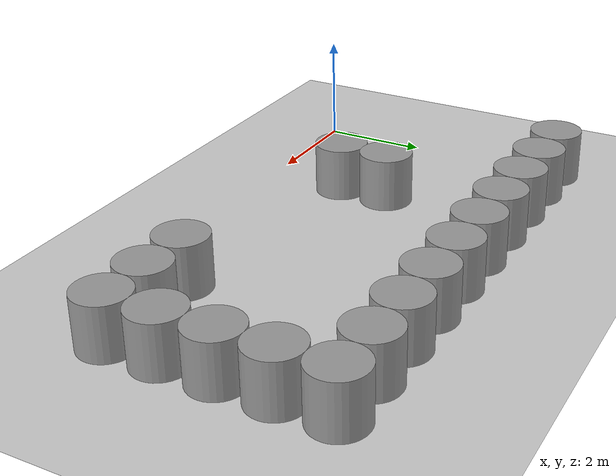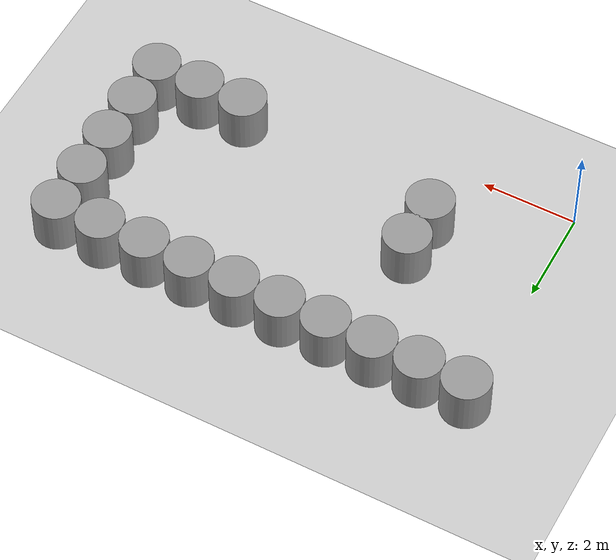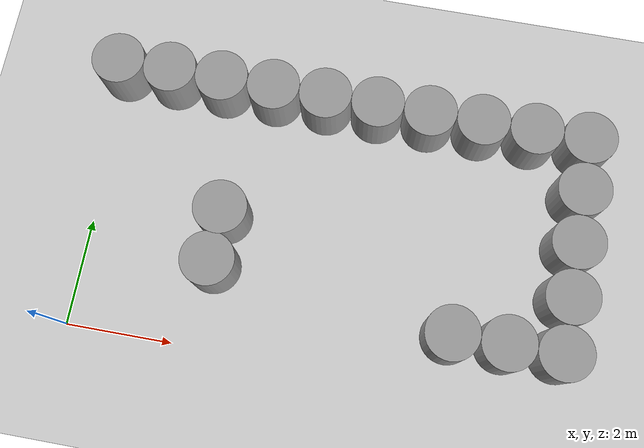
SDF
<sdf version="1.7">
 <world name="default">
  <model name="ground_plane">
   <static>1</static>
   <link name="link">
    <collision name="collision">
     <geometry><plane><normal>0 0 1</normal><size>100 100</size></plane></geometry>
     <surface>
      <contact><collide_bitmask>65535</collide_bitmask></contact>
      <friction><ode><mu>100</mu><mu2>50</mu2></ode></friction>
     </surface>
    </collision>
    <visual name="visual">
     <cast_shadows>0</cast_shadows>
     <geometry><plane><normal>0 0 1</normal><size>100 100</size></plane></geometry>
     <material>
      <script><uri>file://media/materials/scripts/gazebo.material</uri><name>Gazebo/Grey</name></script>
     </material>
    </visual>
   </link>
  </model>
  <model name="cylinder_1m_clone">
   <model name="cylinder_1m">
    <link name="link_0">
     <inertial>
      <mass>1</mass>
      <inertia>
       <ixx>0.166667</ixx>
       <ixy>0</ixy>
       <ixz>0</ixz>
       <iyy>0.166667</iyy>
       <iyz>0</iyz>
       <izz>0.166667</izz>
      </inertia>
     </inertial>
     <pose>0 0 -0 1.5708 -0 0</pose>
     <visual name="visual">
      <geometry>
       <mesh>
        <uri>/home/leesirius/workbench_ws/src/tb3_custom_worlds/custom_models/cylinder_1m.obj</uri>
        <scale>1 1 1</scale>
       </mesh>
      </geometry>
      <material>
       <lighting>1</lighting>
       <script><uri>file://media/materials/scripts/gazebo.material</uri><name>Gazebo/Grey</name></script>
       <shader type="pixel"/>
      </material>
     </visual>
     <collision name="collision">
      <geometry>
       <mesh>
        <uri>/home/leesirius/workbench_ws/src/tb3_custom_worlds/custom_models/cylinder_1m.obj</uri>
        <scale>1 1 1</scale>
       </mesh>
      </geometry>
      <surface>
       <friction>
        <ode><mu>1</mu><mu2>1</mu2><fdir1>0 0 0</fdir1><slip1>0</slip1><slip2>0</slip2></ode>
        <torsional>
         <coefficient>1</coefficient>
         <patch_radius>0</patch_radius>
         <surface_radius>0</surface_radius>
         <use_patch_radius>1</use_patch_radius>
         <ode><slip>0</slip></ode>
        </torsional>
       </friction>
       <bounce><restitution_coefficient>0</restitution_coefficient><threshold>1e+06</threshold></bounce>
       <contact>
        <collide_without_contact>0</collide_without_contact>
        <collide_without_contact_bitmask>1</collide_without_contact_bitmask>
        <collide_bitmask>1</collide_bitmask>
        <ode>
         <soft_cfm>0</soft_cfm>
         <soft_erp>0.2</soft_erp>
         <kp>1e+13</kp>
         <kd>1</kd>
         <max_vel>0.01</max_vel>
         <min_depth>0</min_depth>
        </ode>
        <bullet>
         <split_impulse>1</split_impulse>
         <split_impulse_penetration_threshold>-0.01</split_impulse_penetration_threshold>
         <soft_cfm>0</soft_cfm>
         <soft_erp>0.2</soft_erp>
         <kp>1e+13</kp>
         <kd>1</kd>
        </bullet>
       </contact>
      </surface>
     </collision>
    </link>
    <static>0</static>
    <pose>0 0 4e-06 0 -0 0</pose>
   </model>
   <static>1</static>
   <pose>1.00003 5 0.499993 -9e-06 5e-06 0.000231</pose>
  </model>
  <model name="cylinder_1m_2_clone_2">
   <model name="cylinder_1m">
    <link name="link_0">
     <inertial>
      <mass>1</mass>
      <inertia>
       <ixx>0.166667</ixx>
       <ixy>0</ixy>
       <ixz>0</ixz>
       <iyy>0.166667</iyy>
       <iyz>0</iyz>
       <izz>0.166667</izz>
      </inertia>
     </inertial>
     <pose>0 0 -0 1.5708 -0 0</pose>
     <visual name="visual">
      <geometry>
       <mesh>
        <uri>/home/leesirius/workbench_ws/src/tb3_custom_worlds/custom_models/cylinder_1m.obj</uri>
        <scale>1 1 1</scale>
       </mesh>
      </geometry>
      <material>
       <lighting>1</lighting>
       <script><uri>file://media/materials/scripts/gazebo.material</uri><name>Gazebo/Grey</name></script>
       <shader type="pixel"/>
      </material>
     </visual>
     <collision name="collision">
      <geometry>
       <mesh>
        <uri>/home/leesirius/workbench_ws/src/tb3_custom_worlds/custom_models/cylinder_1m.obj</uri>
        <scale>1 1 1</scale>
       </mesh>
      </geometry>
      <surface>
       <friction>
        <ode><mu>1</mu><mu2>1</mu2><fdir1>0 0 0</fdir1><slip1>0</slip1><slip2>0</slip2></ode>
        <torsional>
         <coefficient>1</coefficient>
         <patch_radius>0</patch_radius>
         <surface_radius>0</surface_radius>
         <use_patch_radius>1</use_patch_radius>
         <ode><slip>0</slip></ode>
        </torsional>
       </friction>
       <bounce><restitution_coefficient>0</restitution_coefficient><threshold>1e+06</threshold></bounce>
       <contact>
        <collide_without_contact>0</collide_without_contact>
        <collide_without_contact_bitmask>1</collide_without_contact_bitmask>
        <collide_bitmask>1</collide_bitmask>
        <ode>
         <soft_cfm>0</soft_cfm>
         <soft_erp>0.2</soft_erp>
         <kp>1e+13</kp>
         <kd>1</kd>
         <max_vel>0.01</max_vel>
         <min_depth>0</min_depth>
        </ode>
        <bullet>
         <split_impulse>1</split_impulse>
         <split_impulse_penetration_threshold>-0.01</split_impulse_penetration_threshold>
         <soft_cfm>0</soft_cfm>
         <soft_erp>0.2</soft_erp>
         <kp>1e+13</kp>
         <kd>1</kd>
        </bullet>
       </contact>
      </surface>
     </collision>
    </link>
    <static>0</static>
    <pose>0 0 4e-06 0 -0 0</pose>
   </model>
   <static>1</static>
   <pose>0.000101 5.00052 0.500002 -5.4e-05 8e-06 5.1e-05</pose>
  </model>
  <model name="cylinder_1m_2_clone_26">
   <model name="cylinder_1m">
    <link name="link_0">
     <inertial>
      <mass>1</mass>
      <inertia>
       <ixx>0.166667</ixx>
       <ixy>0</ixy>
       <ixz>0</ixz>
       <iyy>0.166667</iyy>
       <iyz>0</iyz>
       <izz>0.166667</izz>
      </inertia>
     </inertial>
     <pose>0 0 -0 1.5708 -0 0</pose>
     <visual name="visual">
      <geometry>
       <mesh>
        <uri>/home/leesirius/workbench_ws/src/tb3_custom_worlds/custom_models/cylinder_1m.obj</uri>
        <scale>1 1 1</scale>
       </mesh>
      </geometry>
      <material>
       <lighting>1</lighting>
       <script><uri>file://media/materials/scripts/gazebo.material</uri><name>Gazebo/Grey</name></script>
       <shader type="pixel"/>
      </material>
     </visual>
     <collision name="collision">
      <geometry>
       <mesh>
        <uri>/home/leesirius/workbench_ws/src/tb3_custom_worlds/custom_models/cylinder_1m.obj</uri>
        <scale>1 1 1</scale>
       </mesh>
      </geometry>
      <surface>
       <friction>
        <ode><mu>1</mu><mu2>1</mu2><fdir1>0 0 0</fdir1><slip1>0</slip1><slip2>0</slip2></ode>
        <torsional>
         <coefficient>1</coefficient>
         <patch_radius>0</patch_radius>
         <surface_radius>0</surface_radius>
         <use_patch_radius>1</use_patch_radius>
         <ode><slip>0</slip></ode>
        </torsional>
       </friction>
       <bounce><restitution_coefficient>0</restitution_coefficient><threshold>1e+06</threshold></bounce>
       <contact>
        <collide_without_contact>0</collide_without_contact>
        <collide_without_contact_bitmask>1</collide_without_contact_bitmask>
        <collide_bitmask>1</collide_bitmask>
        <ode>
         <soft_cfm>0</soft_cfm>
         <soft_erp>0.2</soft_erp>
         <kp>1e+13</kp>
         <kd>1</kd>
         <max_vel>0.01</max_vel>
         <min_depth>0</min_depth>
        </ode>
        <bullet>
         <split_impulse>1</split_impulse>
         <split_impulse_penetration_threshold>-0.01</split_impulse_penetration_threshold>
         <soft_cfm>0</soft_cfm>
         <soft_erp>0.2</soft_erp>
         <kp>1e+13</kp>
         <kd>1</kd>
        </bullet>
       </contact>
      </surface>
     </collision>
    </link>
    <static>0</static>
    <pose>0 0 4e-06 0 -0 0</pose>
   </model>
   <static>1</static>
   <pose>2.00003 4.99998 0.499993 -1e-05 3e-06 0.00017</pose>
  </model>
  <model name="cylinder_1m_2_clone_27">
   <model name="cylinder_1m">
    <link name="link_0">
     <inertial>
      <mass>1</mass>
      <inertia>
       <ixx>0.166667</ixx>
       <ixy>0</ixy>
       <ixz>0</ixz>
       <iyy>0.166667</iyy>
       <iyz>0</iyz>
       <izz>0.166667</izz>
      </inertia>
     </inertial>
     <pose>0 0 -0 1.5708 -0 0</pose>
     <visual name="visual">
      <geometry>
       <mesh>
        <uri>/home/leesirius/workbench_ws/src/tb3_custom_worlds/custom_models/cylinder_1m.obj</uri>
        <scale>1 1 1</scale>
       </mesh>
      </geometry>
      <material>
       <lighting>1</lighting>
       <script><uri>file://media/materials/scripts/gazebo.material</uri><name>Gazebo/Grey</name></script>
       <shader type="pixel"/>
      </material>
     </visual>
     <collision name="collision">
      <geometry>
       <mesh>
        <uri>/home/leesirius/workbench_ws/src/tb3_custom_worlds/custom_models/cylinder_1m.obj</uri>
        <scale>1 1 1</scale>
       </mesh>
      </geometry>
      <surface>
       <friction>
        <ode><mu>1</mu><mu2>1</mu2><fdir1>0 0 0</fdir1><slip1>0</slip1><slip2>0</slip2></ode>
        <torsional>
         <coefficient>1</coefficient>
         <patch_radius>0</patch_radius>
         <surface_radius>0</surface_radius>
         <use_patch_radius>1</use_patch_radius>
         <ode><slip>0</slip></ode>
        </torsional>
       </friction>
       <bounce><restitution_coefficient>0</restitution_coefficient><threshold>1e+06</threshold></bounce>
       <contact>
        <collide_without_contact>0</collide_without_contact>
        <collide_without_contact_bitmask>1</collide_without_contact_bitmask>
        <collide_bitmask>1</collide_bitmask>
        <ode>
         <soft_cfm>0</soft_cfm>
         <soft_erp>0.2</soft_erp>
         <kp>1e+13</kp>
         <kd>1</kd>
         <max_vel>0.01</max_vel>
         <min_depth>0</min_depth>
        </ode>
        <bullet>
         <split_impulse>1</split_impulse>
         <split_impulse_penetration_threshold>-0.01</split_impulse_penetration_threshold>
         <soft_cfm>0</soft_cfm>
         <soft_erp>0.2</soft_erp>
         <kp>1e+13</kp>
         <kd>1</kd>
        </bullet>
       </contact>
      </surface>
     </collision>
    </link>
    <static>0</static>
    <pose>0 0 4e-06 0 -0 0</pose>
   </model>
   <static>1</static>
   <pose>3.00003 4.99998 0.499993 -1e-05 3e-06 0.00017</pose>
  </model>
  <model name="cylinder_1m_2_clone_28">
   <model name="cylinder_1m">
    <link name="link_0">
     <inertial>
      <mass>1</mass>
      <inertia>
       <ixx>0.166667</ixx>
       <ixy>0</ixy>
       <ixz>0</ixz>
       <iyy>0.166667</iyy>
       <iyz>0</iyz>
       <izz>0.166667</izz>
      </inertia>
     </inertial>
     <pose>0 0 -0 1.5708 -0 0</pose>
     <visual name="visual">
      <geometry>
       <mesh>
        <uri>/home/leesirius/workbench_ws/src/tb3_custom_worlds/custom_models/cylinder_1m.obj</uri>
        <scale>1 1 1</scale>
       </mesh>
      </geometry>
      <material>
       <lighting>1</lighting>
       <script><uri>file://media/materials/scripts/gazebo.material</uri><name>Gazebo/Grey</name></script>
       <shader type="pixel"/>
      </material>
     </visual>
     <collision name="collision">
      <geometry>
       <mesh>
        <uri>/home/leesirius/workbench_ws/src/tb3_custom_worlds/custom_models/cylinder_1m.obj</uri>
        <scale>1 1 1</scale>
       </mesh>
      </geometry>
      <surface>
       <friction>
        <ode><mu>1</mu><mu2>1</mu2><fdir1>0 0 0</fdir1><slip1>0</slip1><slip2>0</slip2></ode>
        <torsional>
         <coefficient>1</coefficient>
         <patch_radius>0</patch_radius>
         <surface_radius>0</surface_radius>
         <use_patch_radius>1</use_patch_radius>
         <ode><slip>0</slip></ode>
        </torsional>
       </friction>
       <bounce><restitution_coefficient>0</restitution_coefficient><threshold>1e+06</threshold></bounce>
       <contact>
        <collide_without_contact>0</collide_without_contact>
        <collide_without_contact_bitmask>1</collide_without_contact_bitmask>
        <collide_bitmask>1</collide_bitmask>
        <ode>
         <soft_cfm>0</soft_cfm>
         <soft_erp>0.2</soft_erp>
         <kp>1e+13</kp>
         <kd>1</kd>
         <max_vel>0.01</max_vel>
         <min_depth>0</min_depth>
        </ode>
        <bullet>
         <split_impulse>1</split_impulse>
         <split_impulse_penetration_threshold>-0.01</split_impulse_penetration_threshold>
         <soft_cfm>0</soft_cfm>
         <soft_erp>0.2</soft_erp>
         <kp>1e+13</kp>
         <kd>1</kd>
        </bullet>
       </contact>
      </surface>
     </collision>
    </link>
    <static>0</static>
    <pose>0 0 4e-06 0 -0 0</pose>
   </model>
   <static>1</static>
   <pose>4.00003 4.99998 0.499993 -1e-05 3e-06 0.00017</pose>
  </model>
  <model name="cylinder_1m_2_clone_29">
   <model name="cylinder_1m">
    <link name="link_0">
     <inertial>
      <mass>1</mass>
      <inertia>
       <ixx>0.166667</ixx>
       <ixy>0</ixy>
       <ixz>0</ixz>
       <iyy>0.166667</iyy>
       <iyz>0</iyz>
       <izz>0.166667</izz>
      </inertia>
     </inertial>
     <pose>0 0 -0 1.5708 -0 0</pose>
     <visual name="visual">
      <geometry>
       <mesh>
        <uri>/home/leesirius/workbench_ws/src/tb3_custom_worlds/custom_models/cylinder_1m.obj</uri>
        <scale>1 1 1</scale>
       </mesh>
      </geometry>
      <material>
       <lighting>1</lighting>
       <script><uri>file://media/materials/scripts/gazebo.material</uri><name>Gazebo/Grey</name></script>
       <shader type="pixel"/>
      </material>
     </visual>
     <collision name="collision">
      <geometry>
       <mesh>
        <uri>/home/leesirius/workbench_ws/src/tb3_custom_worlds/custom_models/cylinder_1m.obj</uri>
        <scale>1 1 1</scale>
       </mesh>
      </geometry>
      <surface>
       <friction>
        <ode><mu>1</mu><mu2>1</mu2><fdir1>0 0 0</fdir1><slip1>0</slip1><slip2>0</slip2></ode>
        <torsional>
         <coefficient>1</coefficient>
         <patch_radius>0</patch_radius>
         <surface_radius>0</surface_radius>
         <use_patch_radius>1</use_patch_radius>
         <ode><slip>0</slip></ode>
        </torsional>
       </friction>
       <bounce><restitution_coefficient>0</restitution_coefficient><threshold>1e+06</threshold></bounce>
       <contact>
        <collide_without_contact>0</collide_without_contact>
        <collide_without_contact_bitmask>1</collide_without_contact_bitmask>
        <collide_bitmask>1</collide_bitmask>
        <ode>
         <soft_cfm>0</soft_cfm>
         <soft_erp>0.2</soft_erp>
         <kp>1e+13</kp>
         <kd>1</kd>
         <max_vel>0.01</max_vel>
         <min_depth>0</min_depth>
        </ode>
        <bullet>
         <split_impulse>1</split_impulse>
         <split_impulse_penetration_threshold>-0.01</split_impulse_penetration_threshold>
         <soft_cfm>0</soft_cfm>
         <soft_erp>0.2</soft_erp>
         <kp>1e+13</kp>
         <kd>1</kd>
        </bullet>
       </contact>
      </surface>
     </collision>
    </link>
    <static>0</static>
    <pose>0 0 4e-06 0 -0 0</pose>
   </model>
   <static>1</static>
   <pose>5.00003 4.99998 0.499993 -1e-05 3e-06 0.00017</pose>
  </model>
  <model name="cylinder_1m_2_clone_33">
   <model name="cylinder_1m">
    <link name="link_0">
     <inertial>
      <mass>1</mass>
      <inertia>
       <ixx>0.166667</ixx>
       <ixy>0</ixy>
       <ixz>0</ixz>
       <iyy>0.166667</iyy>
       <iyz>0</iyz>
       <izz>0.166667</izz>
      </inertia>
     </inertial>
     <pose>0 0 -0 1.5708 -0 0</pose>
     <visual name="visual">
      <geometry>
       <mesh>
        <uri>/home/leesirius/workbench_ws/src/tb3_custom_worlds/custom_models/cylinder_1m.obj</uri>
        <scale>1 1 1</scale>
       </mesh>
      </geometry>
      <material>
       <lighting>1</lighting>
       <script><uri>file://media/materials/scripts/gazebo.material</uri><name>Gazebo/Grey</name></script>
       <shader type="pixel"/>
      </material>
     </visual>
     <collision name="collision">
      <geometry>
       <mesh>
        <uri>/home/leesirius/workbench_ws/src/tb3_custom_worlds/custom_models/cylinder_1m.obj</uri>
        <scale>1 1 1</scale>
       </mesh>
      </geometry>
      <surface>
       <friction>
        <ode><mu>1</mu><mu2>1</mu2><fdir1>0 0 0</fdir1><slip1>0</slip1><slip2>0</slip2></ode>
        <torsional>
         <coefficient>1</coefficient>
         <patch_radius>0</patch_radius>
         <surface_radius>0</surface_radius>
         <use_patch_radius>1</use_patch_radius>
         <ode><slip>0</slip></ode>
        </torsional>
       </friction>
       <bounce><restitution_coefficient>0</restitution_coefficient><threshold>1e+06</threshold></bounce>
       <contact>
        <collide_without_contact>0</collide_without_contact>
        <collide_without_contact_bitmask>1</collide_without_contact_bitmask>
        <collide_bitmask>1</collide_bitmask>
        <ode>
         <soft_cfm>0</soft_cfm>
         <soft_erp>0.2</soft_erp>
         <kp>1e+13</kp>
         <kd>1</kd>
         <max_vel>0.01</max_vel>
         <min_depth>0</min_depth>
        </ode>
        <bullet>
         <split_impulse>1</split_impulse>
         <split_impulse_penetration_threshold>-0.01</split_impulse_penetration_threshold>
         <soft_cfm>0</soft_cfm>
         <soft_erp>0.2</soft_erp>
         <kp>1e+13</kp>
         <kd>1</kd>
        </bullet>
       </contact>
      </surface>
     </collision>
    </link>
    <static>0</static>
    <pose>0 0 4e-06 0 -0 0</pose>
   </model>
   <static>1</static>
   <pose>6.00003 4.99998 0.499993 -1e-05 3e-06 0.00017</pose>
  </model>
  <model name="cylinder_1m_2_clone_25">
   <model name="cylinder_1m">
    <link name="link_0">
     <inertial>
      <mass>1</mass>
      <inertia>
       <ixx>0.166667</ixx>
       <ixy>0</ixy>
       <ixz>0</ixz>
       <iyy>0.166667</iyy>
       <iyz>0</iyz>
       <izz>0.166667</izz>
      </inertia>
     </inertial>
     <pose>0 0 -0 1.5708 -0 0</pose>
     <visual name="visual">
      <geometry>
       <mesh>
        <uri>/home/leesirius/workbench_ws/src/tb3_custom_worlds/custom_models/cylinder_1m.obj</uri>
        <scale>1 1 1</scale>
       </mesh>
      </geometry>
      <material>
       <lighting>1</lighting>
       <script><uri>file://media/materials/scripts/gazebo.material</uri><name>Gazebo/Grey</name></script>
       <shader type="pixel"/>
      </material>
     </visual>
     <collision name="collision">
      <geometry>
       <mesh>
        <uri>/home/leesirius/workbench_ws/src/tb3_custom_worlds/custom_models/cylinder_1m.obj</uri>
        <scale>1 1 1</scale>
       </mesh>
      </geometry>
      <surface>
       <friction>
        <ode><mu>1</mu><mu2>1</mu2><fdir1>0 0 0</fdir1><slip1>0</slip1><slip2>0</slip2></ode>
        <torsional>
         <coefficient>1</coefficient>
         <patch_radius>0</patch_radius>
         <surface_radius>0</surface_radius>
         <use_patch_radius>1</use_patch_radius>
         <ode><slip>0</slip></ode>
        </torsional>
       </friction>
       <bounce><restitution_coefficient>0</restitution_coefficient><threshold>1e+06</threshold></bounce>
       <contact>
        <collide_without_contact>0</collide_without_contact>
        <collide_without_contact_bitmask>1</collide_without_contact_bitmask>
        <collide_bitmask>1</collide_bitmask>
        <ode>
         <soft_cfm>0</soft_cfm>
         <soft_erp>0.2</soft_erp>
         <kp>1e+13</kp>
         <kd>1</kd>
         <max_vel>0.01</max_vel>
         <min_depth>0</min_depth>
        </ode>
        <bullet>
         <split_impulse>1</split_impulse>
         <split_impulse_penetration_threshold>-0.01</split_impulse_penetration_threshold>
         <soft_cfm>0</soft_cfm>
         <soft_erp>0.2</soft_erp>
         <kp>1e+13</kp>
         <kd>1</kd>
        </bullet>
       </contact>
      </surface>
     </collision>
    </link>
    <static>0</static>
    <pose>0 0 4e-06 0 -0 0</pose>
   </model>
   <static>1</static>
   <pose>7.00003 4.99998 0.499993 -1e-05 3e-06 0.00017</pose>
  </model>
  <model name="cylinder_1m_2_clone_34">
   <model name="cylinder_1m">
    <link name="link_0">
     <inertial>
      <mass>1</mass>
      <inertia>
       <ixx>0.166667</ixx>
       <ixy>0</ixy>
       <ixz>0</ixz>
       <iyy>0.166667</iyy>
       <iyz>0</iyz>
       <izz>0.166667</izz>
      </inertia>
     </inertial>
     <pose>0 0 -0 1.5708 -0 0</pose>
     <visual name="visual">
      <geometry>
       <mesh>
        <uri>/home/leesirius/workbench_ws/src/tb3_custom_worlds/custom_models/cylinder_1m.obj</uri>
        <scale>1 1 1</scale>
       </mesh>
      </geometry>
      <material>
       <lighting>1</lighting>
       <script><uri>file://media/materials/scripts/gazebo.material</uri><name>Gazebo/Grey</name></script>
       <shader type="pixel"/>
      </material>
     </visual>
     <collision name="collision">
      <geometry>
       <mesh>
        <uri>/home/leesirius/workbench_ws/src/tb3_custom_worlds/custom_models/cylinder_1m.obj</uri>
        <scale>1 1 1</scale>
       </mesh>
      </geometry>
      <surface>
       <friction>
        <ode><mu>1</mu><mu2>1</mu2><fdir1>0 0 0</fdir1><slip1>0</slip1><slip2>0</slip2></ode>
        <torsional>
         <coefficient>1</coefficient>
         <patch_radius>0</patch_radius>
         <surface_radius>0</surface_radius>
         <use_patch_radius>1</use_patch_radius>
         <ode><slip>0</slip></ode>
        </torsional>
       </friction>
       <bounce><restitution_coefficient>0</restitution_coefficient><threshold>1e+06</threshold></bounce>
       <contact>
        <collide_without_contact>0</collide_without_contact>
        <collide_without_contact_bitmask>1</collide_without_contact_bitmask>
        <collide_bitmask>1</collide_bitmask>
        <ode>
         <soft_cfm>0</soft_cfm>
         <soft_erp>0.2</soft_erp>
         <kp>1e+13</kp>
         <kd>1</kd>
         <max_vel>0.01</max_vel>
         <min_depth>0</min_depth>
        </ode>
        <bullet>
         <split_impulse>1</split_impulse>
         <split_impulse_penetration_threshold>-0.01</split_impulse_penetration_threshold>
         <soft_cfm>0</soft_cfm>
         <soft_erp>0.2</soft_erp>
         <kp>1e+13</kp>
         <kd>1</kd>
        </bullet>
       </contact>
      </surface>
     </collision>
    </link>
    <static>0</static>
    <pose>0 0 4e-06 0 -0 0</pose>
   </model>
   <static>1</static>
   <pose>8.00003 4.99998 0.499993 -1e-05 3e-06 0.00017</pose>
  </model>
  <model name="cylinder_1m_2_clone_46_clone_3">
   <model name="cylinder_1m">
    <link name="link_0">
     <inertial>
      <mass>1</mass>
      <inertia>
       <ixx>0.166667</ixx>
       <ixy>0</ixy>
       <ixz>0</ixz>
       <iyy>0.166667</iyy>
       <iyz>0</iyz>
       <izz>0.166667</izz>
      </inertia>
     </inertial>
     <pose>0 0 -0 1.5708 -0 0</pose>
     <visual name="visual">
      <geometry>
       <mesh>
        <uri>/home/leesirius/workbench_ws/src/tb3_custom_worlds/custom_models/cylinder_1m.obj</uri>
        <scale>1 1 1</scale>
       </mesh>
      </geometry>
      <material>
       <lighting>1</lighting>
       <script><uri>file://media/materials/scripts/gazebo.material</uri><name>Gazebo/Grey</name></script>
       <shader type="pixel"/>
      </material>
     </visual>
     <collision name="collision">
      <geometry>
       <mesh>
        <uri>/home/leesirius/workbench_ws/src/tb3_custom_worlds/custom_models/cylinder_1m.obj</uri>
        <scale>1 1 1</scale>
       </mesh>
      </geometry>
      <surface>
       <friction>
        <ode><mu>1</mu><mu2>1</mu2><fdir1>0 0 0</fdir1><slip1>0</slip1><slip2>0</slip2></ode>
        <torsional>
         <coefficient>1</coefficient>
         <patch_radius>0</patch_radius>
         <surface_radius>0</surface_radius>
         <use_patch_radius>1</use_patch_radius>
         <ode><slip>0</slip></ode>
        </torsional>
       </friction>
       <bounce><restitution_coefficient>0</restitution_coefficient><threshold>1e+06</threshold></bounce>
       <contact>
        <collide_without_contact>0</collide_without_contact>
        <collide_without_contact_bitmask>1</collide_without_contact_bitmask>
        <collide_bitmask>1</collide_bitmask>
        <ode>
         <soft_cfm>0</soft_cfm>
         <soft_erp>0.2</soft_erp>
         <kp>1e+13</kp>
         <kd>1</kd>
         <max_vel>0.01</max_vel>
         <min_depth>0</min_depth>
        </ode>
        <bullet>
         <split_impulse>1</split_impulse>
         <split_impulse_penetration_threshold>-0.01</split_impulse_penetration_threshold>
         <soft_cfm>0</soft_cfm>
         <soft_erp>0.2</soft_erp>
         <kp>1e+13</kp>
         <kd>1</kd>
        </bullet>
       </contact>
      </surface>
     </collision>
    </link>
    <static>0</static>
    <pose>0 0 4e-06 0 -0 0</pose>
   </model>
   <static>1</static>
   <pose>9.00001 4.99999 0.499993 -5e-06 -6e-06 0.0002</pose>
  </model>
  <model name="cylinder_1m_2_clone_46_clone_4">
   <model name="cylinder_1m">
    <link name="link_0">
     <inertial>
      <mass>1</mass>
      <inertia>
       <ixx>0.166667</ixx>
       <ixy>0</ixy>
       <ixz>0</ixz>
       <iyy>0.166667</iyy>
       <iyz>0</iyz>
       <izz>0.166667</izz>
      </inertia>
     </inertial>
     <pose>0 0 -0 1.5708 -0 0</pose>
     <visual name="visual">
      <geometry>
       <mesh>
        <uri>/home/leesirius/workbench_ws/src/tb3_custom_worlds/custom_models/cylinder_1m.obj</uri>
        <scale>1 1 1</scale>
       </mesh>
      </geometry>
      <material>
       <lighting>1</lighting>
       <script><uri>file://media/materials/scripts/gazebo.material</uri><name>Gazebo/Grey</name></script>
       <shader type="pixel"/>
      </material>
     </visual>
     <collision name="collision">
      <geometry>
       <mesh>
        <uri>/home/leesirius/workbench_ws/src/tb3_custom_worlds/custom_models/cylinder_1m.obj</uri>
        <scale>1 1 1</scale>
       </mesh>
      </geometry>
      <surface>
       <friction>
        <ode><mu>1</mu><mu2>1</mu2><fdir1>0 0 0</fdir1><slip1>0</slip1><slip2>0</slip2></ode>
        <torsional>
         <coefficient>1</coefficient>
         <patch_radius>0</patch_radius>
         <surface_radius>0</surface_radius>
         <use_patch_radius>1</use_patch_radius>
         <ode><slip>0</slip></ode>
        </torsional>
       </friction>
       <bounce><restitution_coefficient>0</restitution_coefficient><threshold>1e+06</threshold></bounce>
       <contact>
        <collide_without_contact>0</collide_without_contact>
        <collide_without_contact_bitmask>1</collide_without_contact_bitmask>
        <collide_bitmask>1</collide_bitmask>
        <ode>
         <soft_cfm>0</soft_cfm>
         <soft_erp>0.2</soft_erp>
         <kp>1e+13</kp>
         <kd>1</kd>
         <max_vel>0.01</max_vel>
         <min_depth>0</min_depth>
        </ode>
        <bullet>
         <split_impulse>1</split_impulse>
         <split_impulse_penetration_threshold>-0.01</split_impulse_penetration_threshold>
         <soft_cfm>0</soft_cfm>
         <soft_erp>0.2</soft_erp>
         <kp>1e+13</kp>
         <kd>1</kd>
        </bullet>
       </contact>
      </surface>
     </collision>
    </link>
    <static>0</static>
    <pose>0 0 4e-06 0 -0 0</pose>
   </model>
   <static>1</static>
   <pose>9.00001 3.99999 0.499993 -5e-06 -6e-06 0.0002</pose>
  </model>
  <model name="cylinder_1m_2_clone_46_clone_5">
   <model name="cylinder_1m">
    <link name="link_0">
     <inertial>
      <mass>1</mass>
      <inertia>
       <ixx>0.166667</ixx>
       <ixy>0</ixy>
       <ixz>0</ixz>
       <iyy>0.166667</iyy>
       <iyz>0</iyz>
       <izz>0.166667</izz>
      </inertia>
     </inertial>
     <pose>0 0 -0 1.5708 -0 0</pose>
     <visual name="visual">
      <geometry>
       <mesh>
        <uri>/home/leesirius/workbench_ws/src/tb3_custom_worlds/custom_models/cylinder_1m.obj</uri>
        <scale>1 1 1</scale>
       </mesh>
      </geometry>
      <material>
       <lighting>1</lighting>
       <script><uri>file://media/materials/scripts/gazebo.material</uri><name>Gazebo/Grey</name></script>
       <shader type="pixel"/>
      </material>
     </visual>
     <collision name="collision">
      <geometry>
       <mesh>
        <uri>/home/leesirius/workbench_ws/src/tb3_custom_worlds/custom_models/cylinder_1m.obj</uri>
        <scale>1 1 1</scale>
       </mesh>
      </geometry>
      <surface>
       <friction>
        <ode><mu>1</mu><mu2>1</mu2><fdir1>0 0 0</fdir1><slip1>0</slip1><slip2>0</slip2></ode>
        <torsional>
         <coefficient>1</coefficient>
         <patch_radius>0</patch_radius>
         <surface_radius>0</surface_radius>
         <use_patch_radius>1</use_patch_radius>
         <ode><slip>0</slip></ode>
        </torsional>
       </friction>
       <bounce><restitution_coefficient>0</restitution_coefficient><threshold>1e+06</threshold></bounce>
       <contact>
        <collide_without_contact>0</collide_without_contact>
        <collide_without_contact_bitmask>1</collide_without_contact_bitmask>
        <collide_bitmask>1</collide_bitmask>
        <ode>
         <soft_cfm>0</soft_cfm>
         <soft_erp>0.2</soft_erp>
         <kp>1e+13</kp>
         <kd>1</kd>
         <max_vel>0.01</max_vel>
         <min_depth>0</min_depth>
        </ode>
        <bullet>
         <split_impulse>1</split_impulse>
         <split_impulse_penetration_threshold>-0.01</split_impulse_penetration_threshold>
         <soft_cfm>0</soft_cfm>
         <soft_erp>0.2</soft_erp>
         <kp>1e+13</kp>
         <kd>1</kd>
        </bullet>
       </contact>
      </surface>
     </collision>
    </link>
    <static>0</static>
    <pose>0 0 4e-06 0 -0 0</pose>
   </model>
   <static>1</static>
   <pose>9.00001 2.99999 0.499993 -5e-06 -6e-06 0.0002</pose>
  </model>
  <model name="cylinder_1m_2_clone_46_clone_6">
   <model name="cylinder_1m">
    <link name="link_0">
     <inertial>
      <mass>1</mass>
      <inertia>
       <ixx>0.166667</ixx>
       <ixy>0</ixy>
       <ixz>0</ixz>
       <iyy>0.166667</iyy>
       <iyz>0</iyz>
       <izz>0.166667</izz>
      </inertia>
     </inertial>
     <pose>0 0 -0 1.5708 -0 0</pose>
     <visual name="visual">
      <geometry>
       <mesh>
        <uri>/home/leesirius/workbench_ws/src/tb3_custom_worlds/custom_models/cylinder_1m.obj</uri>
        <scale>1 1 1</scale>
       </mesh>
      </geometry>
      <material>
       <lighting>1</lighting>
       <script><uri>file://media/materials/scripts/gazebo.material</uri><name>Gazebo/Grey</name></script>
       <shader type="pixel"/>
      </material>
     </visual>
     <collision name="collision">
      <geometry>
       <mesh>
        <uri>/home/leesirius/workbench_ws/src/tb3_custom_worlds/custom_models/cylinder_1m.obj</uri>
        <scale>1 1 1</scale>
       </mesh>
      </geometry>
      <surface>
       <friction>
        <ode><mu>1</mu><mu2>1</mu2><fdir1>0 0 0</fdir1><slip1>0</slip1><slip2>0</slip2></ode>
        <torsional>
         <coefficient>1</coefficient>
         <patch_radius>0</patch_radius>
         <surface_radius>0</surface_radius>
         <use_patch_radius>1</use_patch_radius>
         <ode><slip>0</slip></ode>
        </torsional>
       </friction>
       <bounce><restitution_coefficient>0</restitution_coefficient><threshold>1e+06</threshold></bounce>
       <contact>
        <collide_without_contact>0</collide_without_contact>
        <collide_without_contact_bitmask>1</collide_without_contact_bitmask>
        <collide_bitmask>1</collide_bitmask>
        <ode>
         <soft_cfm>0</soft_cfm>
         <soft_erp>0.2</soft_erp>
         <kp>1e+13</kp>
         <kd>1</kd>
         <max_vel>0.01</max_vel>
         <min_depth>0</min_depth>
        </ode>
        <bullet>
         <split_impulse>1</split_impulse>
         <split_impulse_penetration_threshold>-0.01</split_impulse_penetration_threshold>
         <soft_cfm>0</soft_cfm>
         <soft_erp>0.2</soft_erp>
         <kp>1e+13</kp>
         <kd>1</kd>
        </bullet>
       </contact>
      </surface>
     </collision>
    </link>
    <static>0</static>
    <pose>0 0 4e-06 0 -0 0</pose>
   </model>
   <static>1</static>
   <pose>9.00001 1.99999 0.499993 -5e-06 -6e-06 0.0002</pose>
  </model>
  <model name="cylinder_1m_2_clone_46_clone_7">
   <model name="cylinder_1m">
    <link name="link_0">
     <inertial>
      <mass>1</mass>
      <inertia>
       <ixx>0.166667</ixx>
       <ixy>0</ixy>
       <ixz>0</ixz>
       <iyy>0.166667</iyy>
       <iyz>0</iyz>
       <izz>0.166667</izz>
      </inertia>
     </inertial>
     <pose>0 0 -0 1.5708 -0 0</pose>
     <visual name="visual">
      <geometry>
       <mesh>
        <uri>/home/leesirius/workbench_ws/src/tb3_custom_worlds/custom_models/cylinder_1m.obj</uri>
        <scale>1 1 1</scale>
       </mesh>
      </geometry>
      <material>
       <lighting>1</lighting>
       <script><uri>file://media/materials/scripts/gazebo.material</uri><name>Gazebo/Grey</name></script>
       <shader type="pixel"/>
      </material>
     </visual>
     <collision name="collision">
      <geometry>
       <mesh>
        <uri>/home/leesirius/workbench_ws/src/tb3_custom_worlds/custom_models/cylinder_1m.obj</uri>
        <scale>1 1 1</scale>
       </mesh>
      </geometry>
      <surface>
       <friction>
        <ode><mu>1</mu><mu2>1</mu2><fdir1>0 0 0</fdir1><slip1>0</slip1><slip2>0</slip2></ode>
        <torsional>
         <coefficient>1</coefficient>
         <patch_radius>0</patch_radius>
         <surface_radius>0</surface_radius>
         <use_patch_radius>1</use_patch_radius>
         <ode><slip>0</slip></ode>
        </torsional>
       </friction>
       <bounce><restitution_coefficient>0</restitution_coefficient><threshold>1e+06</threshold></bounce>
       <contact>
        <collide_without_contact>0</collide_without_contact>
        <collide_without_contact_bitmask>1</collide_without_contact_bitmask>
        <collide_bitmask>1</collide_bitmask>
        <ode>
         <soft_cfm>0</soft_cfm>
         <soft_erp>0.2</soft_erp>
         <kp>1e+13</kp>
         <kd>1</kd>
         <max_vel>0.01</max_vel>
         <min_depth>0</min_depth>
        </ode>
        <bullet>
         <split_impulse>1</split_impulse>
         <split_impulse_penetration_threshold>-0.01</split_impulse_penetration_threshold>
         <soft_cfm>0</soft_cfm>
         <soft_erp>0.2</soft_erp>
         <kp>1e+13</kp>
         <kd>1</kd>
        </bullet>
       </contact>
      </surface>
     </collision>
    </link>
    <static>0</static>
    <pose>0 0 4e-06 0 -0 0</pose>
   </model>
   <static>1</static>
   <pose>9.00001 0.999994 0.499993 -5e-06 -6e-06 0.0002</pose>
  </model>
  <model name="cylinder_1m_2_clone_46_clone_8">
   <model name="cylinder_1m">
    <link name="link_0">
     <inertial>
      <mass>1</mass>
      <inertia>
       <ixx>0.166667</ixx>
       <ixy>0</ixy>
       <ixz>0</ixz>
       <iyy>0.166667</iyy>
       <iyz>0</iyz>
       <izz>0.166667</izz>
      </inertia>
     </inertial>
     <pose>0 0 -0 1.5708 -0 0</pose>
     <visual name="visual">
      <geometry>
       <mesh>
        <uri>/home/leesirius/workbench_ws/src/tb3_custom_worlds/custom_models/cylinder_1m.obj</uri>
        <scale>1 1 1</scale>
       </mesh>
      </geometry>
      <material>
       <lighting>1</lighting>
       <script><uri>file://media/materials/scripts/gazebo.material</uri><name>Gazebo/Grey</name></script>
       <shader type="pixel"/>
      </material>
     </visual>
     <collision name="collision">
      <geometry>
       <mesh>
        <uri>/home/leesirius/workbench_ws/src/tb3_custom_worlds/custom_models/cylinder_1m.obj</uri>
        <scale>1 1 1</scale>
       </mesh>
      </geometry>
      <surface>
       <friction>
        <ode><mu>1</mu><mu2>1</mu2><fdir1>0 0 0</fdir1><slip1>0</slip1><slip2>0</slip2></ode>
        <torsional>
         <coefficient>1</coefficient>
         <patch_radius>0</patch_radius>
         <surface_radius>0</surface_radius>
         <use_patch_radius>1</use_patch_radius>
         <ode><slip>0</slip></ode>
        </torsional>
       </friction>
       <bounce><restitution_coefficient>0</restitution_coefficient><threshold>1e+06</threshold></bounce>
       <contact>
        <collide_without_contact>0</collide_without_contact>
        <collide_without_contact_bitmask>1</collide_without_contact_bitmask>
        <collide_bitmask>1</collide_bitmask>
        <ode>
         <soft_cfm>0</soft_cfm>
         <soft_erp>0.2</soft_erp>
         <kp>1e+13</kp>
         <kd>1</kd>
         <max_vel>0.01</max_vel>
         <min_depth>0</min_depth>
        </ode>
        <bullet>
         <split_impulse>1</split_impulse>
         <split_impulse_penetration_threshold>-0.01</split_impulse_penetration_threshold>
         <soft_cfm>0</soft_cfm>
         <soft_erp>0.2</soft_erp>
         <kp>1e+13</kp>
         <kd>1</kd>
        </bullet>
       </contact>
      </surface>
     </collision>
    </link>
    <static>0</static>
    <pose>0 0 4e-06 0 -0 0</pose>
   </model>
   <static>1</static>
   <pose>8.00001 0.999994 0.499993 -5e-06 -6e-06 0.0002</pose>
  </model>
  <model name="cylinder_1m_2_clone_46_clone_9">
   <model name="cylinder_1m">
    <link name="link_0">
     <inertial>
      <mass>1</mass>
      <inertia>
       <ixx>0.166667</ixx>
       <ixy>0</ixy>
       <ixz>0</ixz>
       <iyy>0.166667</iyy>
       <iyz>0</iyz>
       <izz>0.166667</izz>
      </inertia>
     </inertial>
     <pose>0 0 -0 1.5708 -0 0</pose>
     <visual name="visual">
      <geometry>
       <mesh>
        <uri>/home/leesirius/workbench_ws/src/tb3_custom_worlds/custom_models/cylinder_1m.obj</uri>
        <scale>1 1 1</scale>
       </mesh>
      </geometry>
      <material>
       <lighting>1</lighting>
       <script><uri>file://media/materials/scripts/gazebo.material</uri><name>Gazebo/Grey</name></script>
       <shader type="pixel"/>
      </material>
     </visual>
     <collision name="collision">
      <geometry>
       <mesh>
        <uri>/home/leesirius/workbench_ws/src/tb3_custom_worlds/custom_models/cylinder_1m.obj</uri>
        <scale>1 1 1</scale>
       </mesh>
      </geometry>
      <surface>
       <friction>
        <ode><mu>1</mu><mu2>1</mu2><fdir1>0 0 0</fdir1><slip1>0</slip1><slip2>0</slip2></ode>
        <torsional>
         <coefficient>1</coefficient>
         <patch_radius>0</patch_radius>
         <surface_radius>0</surface_radius>
         <use_patch_radius>1</use_patch_radius>
         <ode><slip>0</slip></ode>
        </torsional>
       </friction>
       <bounce><restitution_coefficient>0</restitution_coefficient><threshold>1e+06</threshold></bounce>
       <contact>
        <collide_without_contact>0</collide_without_contact>
        <collide_without_contact_bitmask>1</collide_without_contact_bitmask>
        <collide_bitmask>1</collide_bitmask>
        <ode>
         <soft_cfm>0</soft_cfm>
         <soft_erp>0.2</soft_erp>
         <kp>1e+13</kp>
         <kd>1</kd>
         <max_vel>0.01</max_vel>
         <min_depth>0</min_depth>
        </ode>
        <bullet>
         <split_impulse>1</split_impulse>
         <split_impulse_penetration_threshold>-0.01</split_impulse_penetration_threshold>
         <soft_cfm>0</soft_cfm>
         <soft_erp>0.2</soft_erp>
         <kp>1e+13</kp>
         <kd>1</kd>
        </bullet>
       </contact>
      </surface>
     </collision>
    </link>
    <static>0</static>
    <pose>0 0 4e-06 0 -0 0</pose>
   </model>
   <static>1</static>
   <pose>7.00038 0.999977 0.500061 -1.7e-05 0.00015 0.000225</pose>
  </model>
  <model name="cylinder_1m_2_clone_46_clone_17">
   <model name="cylinder_1m">
    <link name="link_0">
     <inertial>
      <mass>1</mass>
      <inertia>
       <ixx>0.166667</ixx>
       <ixy>0</ixy>
       <ixz>0</ixz>
       <iyy>0.166667</iyy>
       <iyz>0</iyz>
       <izz>0.166667</izz>
      </inertia>
     </inertial>
     <pose>0 0 -0 1.5708 -0 0</pose>
     <visual name="visual">
      <geometry>
       <mesh>
        <uri>/home/leesirius/workbench_ws/src/tb3_custom_worlds/custom_models/cylinder_1m.obj</uri>
        <scale>1 1 1</scale>
       </mesh>
      </geometry>
      <material>
       <lighting>1</lighting>
       <script><uri>file://media/materials/scripts/gazebo.material</uri><name>Gazebo/Grey</name></script>
       <shader type="pixel"/>
      </material>
     </visual>
     <collision name="collision">
      <geometry>
       <mesh>
        <uri>/home/leesirius/workbench_ws/src/tb3_custom_worlds/custom_models/cylinder_1m.obj</uri>
        <scale>1 1 1</scale>
       </mesh>
      </geometry>
      <surface>
       <friction>
        <ode><mu>1</mu><mu2>1</mu2><fdir1>0 0 0</fdir1><slip1>0</slip1><slip2>0</slip2></ode>
        <torsional>
         <coefficient>1</coefficient>
         <patch_radius>0</patch_radius>
         <surface_radius>0</surface_radius>
         <use_patch_radius>1</use_patch_radius>
         <ode><slip>0</slip></ode>
        </torsional>
       </friction>
       <bounce><restitution_coefficient>0</restitution_coefficient><threshold>1e+06</threshold></bounce>
       <contact>
        <collide_without_contact>0</collide_without_contact>
        <collide_without_contact_bitmask>1</collide_without_contact_bitmask>
        <collide_bitmask>1</collide_bitmask>
        <ode>
         <soft_cfm>0</soft_cfm>
         <soft_erp>0.2</soft_erp>
         <kp>1e+13</kp>
         <kd>1</kd>
         <max_vel>0.01</max_vel>
         <min_depth>0</min_depth>
        </ode>
        <bullet>
         <split_impulse>1</split_impulse>
         <split_impulse_penetration_threshold>-0.01</split_impulse_penetration_threshold>
         <soft_cfm>0</soft_cfm>
         <soft_erp>0.2</soft_erp>
         <kp>1e+13</kp>
         <kd>1</kd>
        </bullet>
       </contact>
      </surface>
     </collision>
    </link>
    <static>0</static>
    <pose>0 0 4e-06 0 -0 0</pose>
   </model>
   <static>1</static>
   <pose>2.51788 2.49913 0.499994 -1e-05 1e-06 0.000232</pose>
  </model>
  <model name="cylinder_1m_2_clone_46_clone_17_clone">
   <model name="cylinder_1m">
    <link name="link_0">
     <inertial>
      <mass>1</mass>
      <inertia>
       <ixx>0.166667</ixx>
       <ixy>0</ixy>
       <ixz>0</ixz>
       <iyy>0.166667</iyy>
       <iyz>0</iyz>
       <izz>0.166667</izz>
      </inertia>
     </inertial>
     <pose>0 0 -0 1.5708 -0 0</pose>
     <visual name="visual">
      <geometry>
       <mesh>
        <uri>/home/leesirius/workbench_ws/src/tb3_custom_worlds/custom_models/cylinder_1m.obj</uri>
        <scale>1 1 1</scale>
       </mesh>
      </geometry>
      <material>
       <lighting>1</lighting>
       <script><uri>file://media/materials/scripts/gazebo.material</uri><name>Gazebo/Grey</name></script>
       <shader type="pixel"/>
      </material>
     </visual>
     <collision name="collision">
      <geometry>
       <mesh>
        <uri>/home/leesirius/workbench_ws/src/tb3_custom_worlds/custom_models/cylinder_1m.obj</uri>
        <scale>1 1 1</scale>
       </mesh>
      </geometry>
      <surface>
       <friction>
        <ode><mu>1</mu><mu2>1</mu2><fdir1>0 0 0</fdir1><slip1>0</slip1><slip2>0</slip2></ode>
        <torsional>
         <coefficient>1</coefficient>
         <patch_radius>0</patch_radius>
         <surface_radius>0</surface_radius>
         <use_patch_radius>1</use_patch_radius>
         <ode><slip>0</slip></ode>
        </torsional>
       </friction>
       <bounce><restitution_coefficient>0</restitution_coefficient><threshold>1e+06</threshold></bounce>
       <contact>
        <collide_without_contact>0</collide_without_contact>
        <collide_without_contact_bitmask>1</collide_without_contact_bitmask>
        <collide_bitmask>1</collide_bitmask>
        <ode>
         <soft_cfm>0</soft_cfm>
         <soft_erp>0.2</soft_erp>
         <kp>1e+13</kp>
         <kd>1</kd>
         <max_vel>0.01</max_vel>
         <min_depth>0</min_depth>
        </ode>
        <bullet>
         <split_impulse>1</split_impulse>
         <split_impulse_penetration_threshold>-0.01</split_impulse_penetration_threshold>
         <soft_cfm>0</soft_cfm>
         <soft_erp>0.2</soft_erp>
         <kp>1e+13</kp>
         <kd>1</kd>
        </bullet>
       </contact>
      </surface>
     </collision>
    </link>
    <static>0</static>
    <pose>0 0 4e-06 0 -0 0</pose>
   </model>
   <static>1</static>
   <pose>2.49422 1.53056 0.499996 -4e-06 -0 0.000262</pose>
  </model>
 </world>
</sdf>
